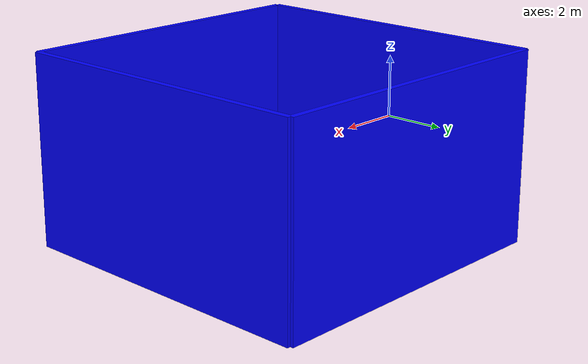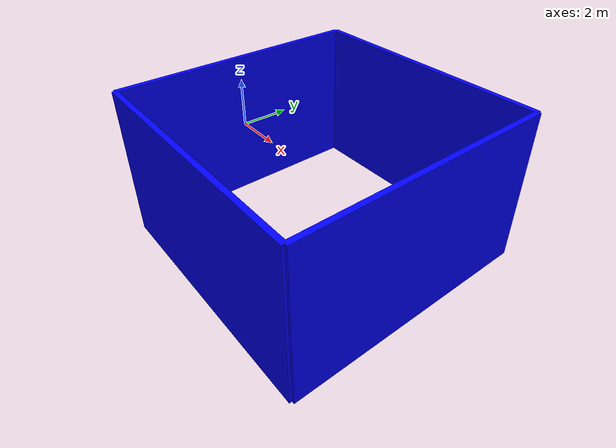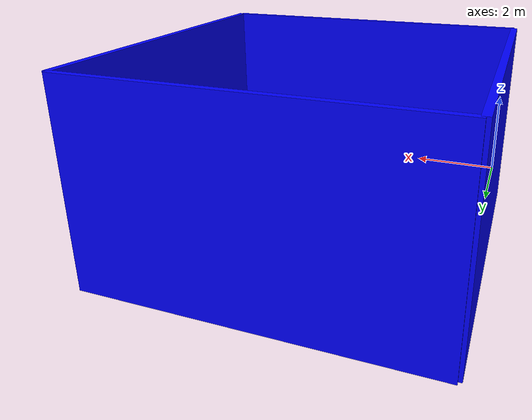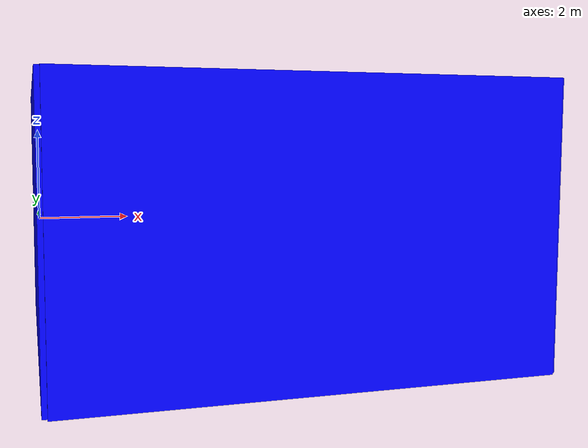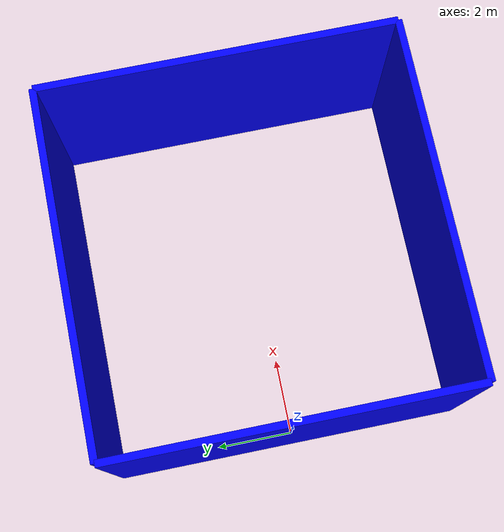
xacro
<?xml version="1.0"?>

<robot xmlns:xacro="http://www.ros.org/wiki/xacro" name="fobo2">

    <xacro:property name="wall_length" value="10" />
    <xacro:property name="wall_height" value="6" />
    <xacro:property name="wall_depth" value="0.2" />

    <xacro:macro name="cylinder_inertia" params="m r h">
        <inertia  ixx="${m*(3*r*r+h*h)/12}" ixy = "0" ixz = "0"
                    iyy="${m*(3*r*r+h*h)/12}" iyz = "0"
                    izz="${m*r*r/2}" />
    </xacro:macro>

    <xacro:macro name="box_inertia" params="m x y z">
        <inertia  ixx="${m*(y*y+z*z)/12}" ixy = "0" ixz = "0"
                    iyy="${m*(x*x+z*z)/12}" iyz = "0"
                    izz="${m*(x*x+z*z)/12}" />
    </xacro:macro>

    <xacro:macro name="sphere_inertia" params="m r">
        <inertia  ixx="${2*m*r*r/5}" ixy = "0" ixz = "0"
                    iyy="${2*m*r*r/5}" iyz = "0"
                    izz="${2*m*r*r/5}" />
    </xacro:macro>

    <!-- link macros -->
    <xacro:macro name="box_link" params="link_name length width depth mass color">
        <link name="${link_name}">
            <visual>
            <geometry>
                <box size="${length} ${width} ${depth}"/>
            </geometry>
                <origin rpy="0 1.5707 0" xyz="0 0 0"/>
                <material name="${color}">
                    <color rgba="0 0 1 1"/>
                </material>
            </visual>
            <collision>
            <geometry>
                <box size="${length} ${width} ${depth}"/>
            </geometry>
                <origin rpy="0 0 0" xyz="0 0 0"/>
            </collision>
            <inertial>
                <mass value="${mass}"/>
                <xacro:box_inertia m="${mass}" x="${length}" y="${width}" z="${depth}" />
            </inertial>
        </link>
    </xacro:macro>

    <xacro:macro name="cylinder_link" params="link_name radius length mass color">
        <link name="${link_name}">
            <visual>
                <geometry>
                    <cylinder radius="${radius}" length="${length}"/>
                </geometry>
                <origin rpy="0 0 0" xyz="0 0 0"/>
                <material name="${color}">
                    <color rgba="1 1 1 1"/>
                </material>
            </visual>
            <collision>
                <geometry>
                    <cylinder radius="${radius}" length="${length}"/>
                </geometry>
                <origin rpy="0 0 0" xyz="0 0 0"/>
            </collision>
            <inertial>
                <mass value="${mass}"/>
                <xacro:cylinder_inertia m="${mass}" r="${radius}" h="${length}" />
            </inertial>
        </link>
    </xacro:macro>

    <xacro:macro name="sphere_link" params="link_name radius mass color">
        <link name="${link_name}">
            <visual>
                <geometry>
                    <sphere radius="${radius}" />
                </geometry>
                <origin rpy="0 0 0" xyz="0 0 0"/>
                <material name="${color}">
                    <color rgba="1 1 1 1"/>
                </material>
            </visual>
            <collision>
                <geometry>
                    <sphere radius="${radius}" />
                </geometry>
                <origin rpy="0 0 0" xyz="0 0 0"/>
            </collision>
            <inertial>
                <mass value="${mass}"/>
                <xacro:sphere_inertia m="${mass}" r="${radius}" />
            </inertial>
        </link>
    </xacro:macro>

    <!-- Define links joints macros  -->
    <xacro:macro name="static_joint" params="name parent child xyz rpy">
        <joint name="${name}" type="fixed">
            <parent link="${parent}" />
            <child link="${child}" />
            <origin xyz="${xyz}" rpy="${rpy}"/>
        </joint>
    </xacro:macro>

    <!-- Base link -->
    <xacro:box_link link_name="wall1" length="${wall_height}" width="${wall_length}" depth="${wall_depth}" mass="0" color="white" />
    <xacro:box_link link_name="wall2" length="${wall_height}" width="${wall_length}" depth="${wall_depth}" mass="0" color="white" />
    <xacro:box_link link_name="wall3" length="${wall_height}" width="${wall_length}" depth="${wall_depth}" mass="0" color="white" />
    <xacro:box_link link_name="wall4" length="${wall_height}" width="${wall_length}" depth="${wall_depth}" mass="0" color="white" />

    <xacro:static_joint name="wall12" parent="wall1" child="wall2" xyz="${wall_length/2} ${wall_length/2} 0" rpy="0 0 1.5707"/>
    <xacro:static_joint name="wall13" parent="wall1" child="wall3" xyz="${wall_length/2} -${wall_length/2} 0" rpy="0 0 -1.5707"/>
    <xacro:static_joint name="wall14" parent="wall1" child="wall4" xyz="${wall_length} 0 0" rpy="0 0 0"/>

</robot>
